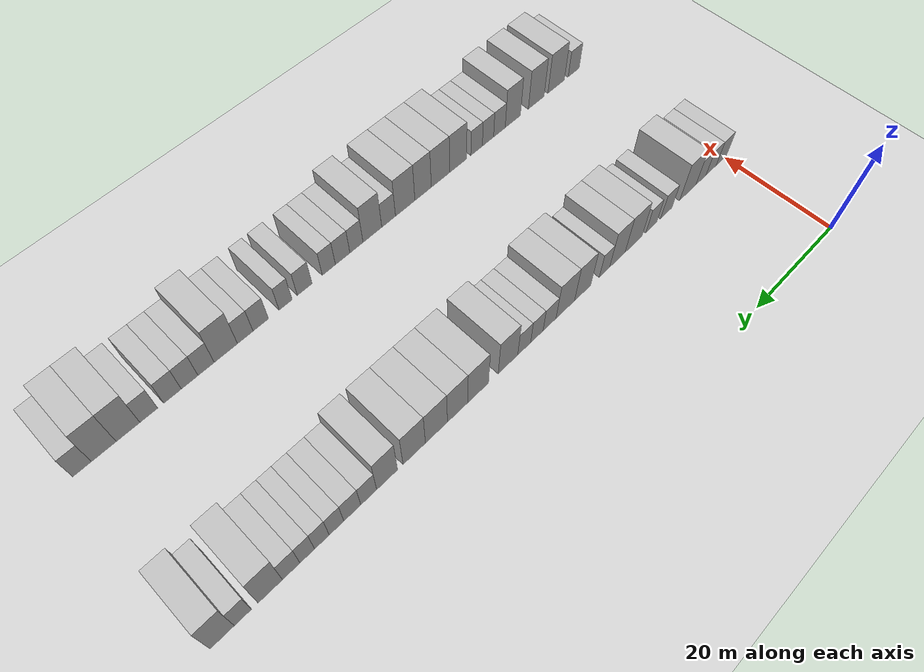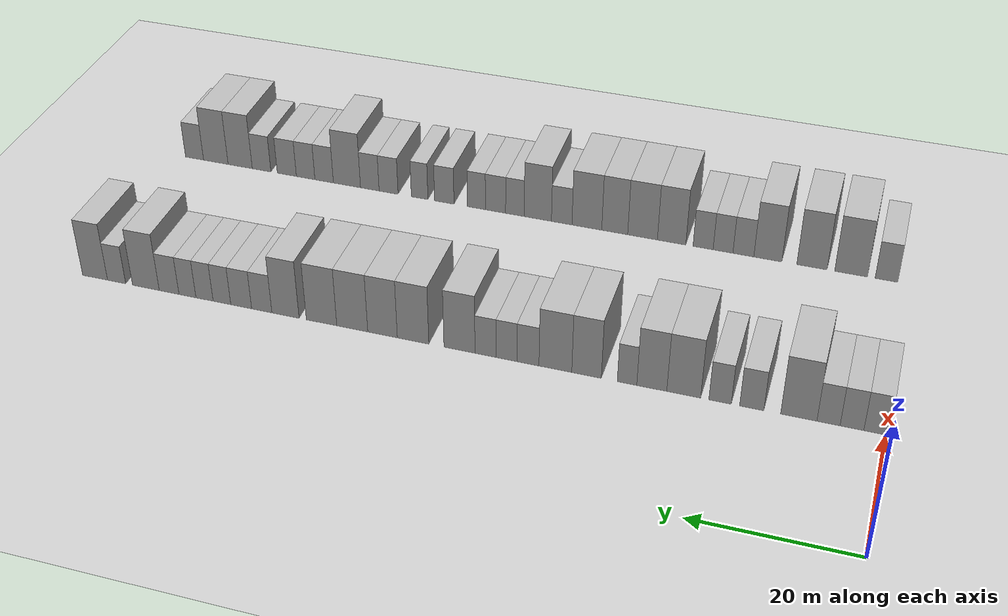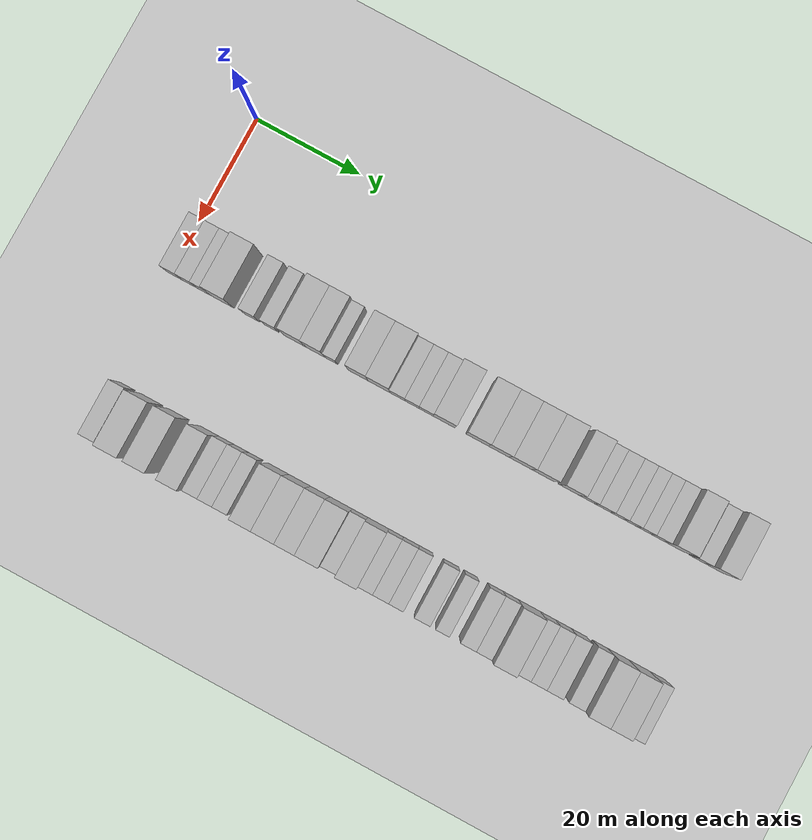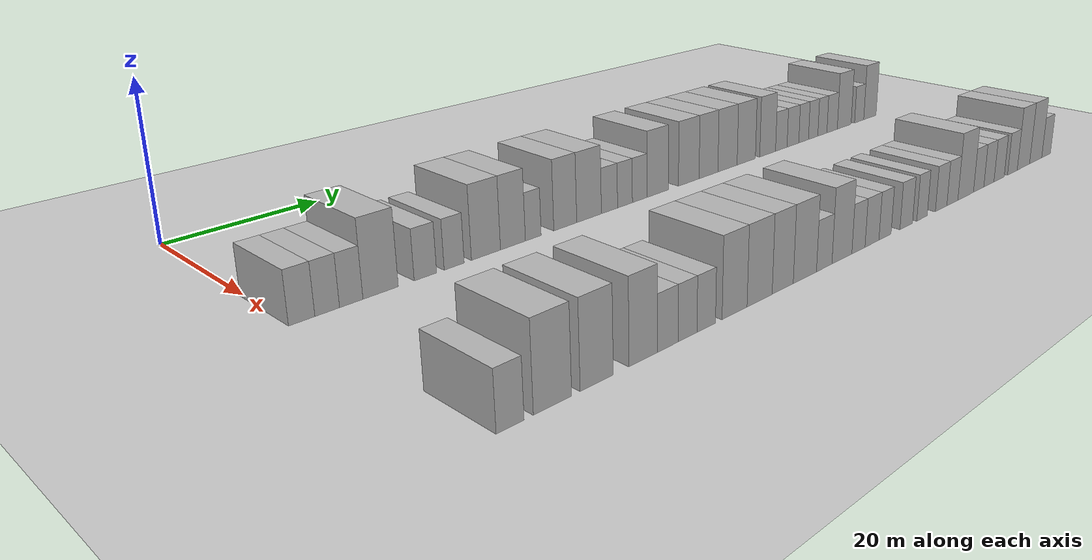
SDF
<sdf version="1.6">
 <world name="default">
  <include>
   <name>ground_plane_2</name>
   <uri>model://HANNAS_ground_plane</uri>
   <pose>100 0 0  0 0 0</pose>
  </include>
  <model name="building_58">
   <static>1</static>
   <pose>25.0000 1.1150 0 0.000000 0.000000 0.000000</pose>
   <link name="link">
    <pose>0 0 3.00 0 0 0</pose>
    <collision name="collision"><geometry><box><size>10.0000 2.8594 6.0000</size></box></geometry></collision>
    <visual name="visual">
     <cast_shadows>0</cast_shadows>
     <geometry><box><size>10.0000 2.8594 6.0000</size></box></geometry>
     <material>
      <script>
       <uri>model://HANNAS_wall/materials/scripts</uri>
       <uri>model://HANNAS_wall/materials/textures</uri>
       <name>vrc/HANNAS_wall</name>
      </script>
     </material>
    </visual>
   </link>
  </model>
  <model name="building_59">
   <static>1</static>
   <pose>25.0000 3.9281 0 0.000000 0.000000 0.000000</pose>
   <link name="link">
    <pose>0 0 3.00 0 0 0</pose>
    <collision name="collision"><geometry><box><size>10.0000 2.7669 6.0000</size></box></geometry></collision>
    <visual name="visual">
     <cast_shadows>0</cast_shadows>
     <geometry><box><size>10.0000 2.7669 6.0000</size></box></geometry>
     <material>
      <script>
       <uri>model://HANNAS_wall/materials/scripts</uri>
       <uri>model://HANNAS_wall/materials/textures</uri>
       <name>vrc/HANNAS_wall</name>
      </script>
     </material>
    </visual>
   </link>
  </model>
  <model name="building_60">
   <static>1</static>
   <pose>25.0000 6.6697 0 0.000000 0.000000 0.000000</pose>
   <link name="link">
    <pose>0 0 3.00 0 0 0</pose>
    <collision name="collision"><geometry><box><size>10.0000 2.7162 6.0000</size></box></geometry></collision>
    <visual name="visual">
     <cast_shadows>0</cast_shadows>
     <geometry><box><size>10.0000 2.7162 6.0000</size></box></geometry>
     <material>
      <script>
       <uri>model://HANNAS_wall/materials/scripts</uri>
       <uri>model://HANNAS_wall/materials/textures</uri>
       <name>vrc/HANNAS_wall</name>
      </script>
     </material>
    </visual>
   </link>
  </model>
  <model name="building_61">
   <static>1</static>
   <pose>25.0000 10.1709 0 0.000000 0.000000 0.000000</pose>
   <link name="link">
    <pose>0 0 4.50 0 0 0</pose>
    <collision name="collision"><geometry><box><size>10.0000 4.2864 9.0000</size></box></geometry></collision>
    <visual name="visual">
     <cast_shadows>0</cast_shadows>
     <geometry><box><size>10.0000 4.2864 9.0000</size></box></geometry>
     <material>
      <script>
       <uri>model://HANNAS_wall/materials/scripts</uri>
       <uri>model://HANNAS_wall/materials/textures</uri>
       <name>vrc/HANNAS_wall</name>
      </script>
     </material>
    </visual>
   </link>
  </model>
  <model name="building_62">
   <static>1</static>
   <pose>25.0000 15.7684 0 0.000000 0.000000 0.000000</pose>
   <link name="link">
    <pose>0 0 3.00 0 0 0</pose>
    <collision name="collision"><geometry><box><size>10.0000 2.9085 6.0000</size></box></geometry></collision>
    <visual name="visual">
     <cast_shadows>0</cast_shadows>
     <geometry><box><size>10.0000 2.9085 6.0000</size></box></geometry>
     <material>
      <script>
       <uri>model://HANNAS_wall/materials/scripts</uri>
       <uri>model://HANNAS_wall/materials/textures</uri>
       <name>vrc/HANNAS_wall</name>
      </script>
     </material>
    </visual>
   </link>
  </model>
  <model name="building_63">
   <static>1</static>
   <pose>25.0000 19.5804 0 0.000000 0.000000 0.000000</pose>
   <link name="link">
    <pose>0 0 3.00 0 0 0</pose>
    <collision name="collision"><geometry><box><size>10.0000 2.7154 6.0000</size></box></geometry></collision>
    <visual name="visual">
     <cast_shadows>0</cast_shadows>
     <geometry><box><size>10.0000 2.7154 6.0000</size></box></geometry>
     <material>
      <script>
       <uri>model://HANNAS_wall/materials/scripts</uri>
       <uri>model://HANNAS_wall/materials/textures</uri>
       <name>vrc/HANNAS_wall</name>
      </script>
     </material>
    </visual>
   </link>
  </model>
  <model name="building_64">
   <static>1</static>
   <pose>25.0000 24.0106 0 0.000000 0.000000 0.000000</pose>
   <link name="link">
    <pose>0 0 4.50 0 0 0</pose>
    <collision name="collision"><geometry><box><size>10.0000 4.1451 9.0000</size></box></geometry></collision>
    <visual name="visual">
     <cast_shadows>0</cast_shadows>
     <geometry><box><size>10.0000 4.1451 9.0000</size></box></geometry>
     <material>
      <script>
       <uri>model://HANNAS_wall/materials/scripts</uri>
       <uri>model://HANNAS_wall/materials/textures</uri>
       <name>vrc/HANNAS_wall</name>
      </script>
     </material>
    </visual>
   </link>
  </model>
  <model name="building_65">
   <static>1</static>
   <pose>25.0000 27.9372 0 0.000000 0.000000 0.000000</pose>
   <link name="link">
    <pose>0 0 4.50 0 0 0</pose>
    <collision name="collision"><geometry><box><size>10.0000 3.7080 9.0000</size></box></geometry></collision>
    <visual name="visual">
     <cast_shadows>0</cast_shadows>
     <geometry><box><size>10.0000 3.7080 9.0000</size></box></geometry>
     <material>
      <script>
       <uri>model://HANNAS_wall/materials/scripts</uri>
       <uri>model://HANNAS_wall/materials/textures</uri>
       <name>vrc/HANNAS_wall</name>
      </script>
     </material>
    </visual>
   </link>
  </model>
  <model name="building_66">
   <static>1</static>
   <pose>25.0000 31.0018 0 0.000000 0.000000 0.000000</pose>
   <link name="link">
    <pose>0 0 3.00 0 0 0</pose>
    <collision name="collision"><geometry><box><size>10.0000 2.4212 6.0000</size></box></geometry></collision>
    <visual name="visual">
     <cast_shadows>0</cast_shadows>
     <geometry><box><size>10.0000 2.4212 6.0000</size></box></geometry>
     <material>
      <script>
       <uri>model://HANNAS_wall/materials/scripts</uri>
       <uri>model://HANNAS_wall/materials/textures</uri>
       <name>vrc/HANNAS_wall</name>
      </script>
     </material>
    </visual>
   </link>
  </model>
  <model name="building_67">
   <static>1</static>
   <pose>25.0000 36.0762 0 0.000000 0.000000 0.000000</pose>
   <link name="link">
    <pose>0 0 4.50 0 0 0</pose>
    <collision name="collision"><geometry><box><size>10.0000 3.7278 9.0000</size></box></geometry></collision>
    <visual name="visual">
     <cast_shadows>0</cast_shadows>
     <geometry><box><size>10.0000 3.7278 9.0000</size></box></geometry>
     <material>
      <script>
       <uri>model://HANNAS_wall/materials/scripts</uri>
       <uri>model://HANNAS_wall/materials/textures</uri>
       <name>vrc/HANNAS_wall</name>
      </script>
     </material>
    </visual>
   </link>
  </model>
  <model name="building_68">
   <static>1</static>
   <pose>25.0000 40.0286 0 0.000000 0.000000 0.000000</pose>
   <link name="link">
    <pose>0 0 4.50 0 0 0</pose>
    <collision name="collision"><geometry><box><size>10.0000 4.1769 9.0000</size></box></geometry></collision>
    <visual name="visual">
     <cast_shadows>0</cast_shadows>
     <geometry><box><size>10.0000 4.1769 9.0000</size></box></geometry>
     <material>
      <script>
       <uri>model://HANNAS_wall/materials/scripts</uri>
       <uri>model://HANNAS_wall/materials/textures</uri>
       <name>vrc/HANNAS_wall</name>
      </script>
     </material>
    </visual>
   </link>
  </model>
  <model name="building_69">
   <static>1</static>
   <pose>25.0000 43.5361 0 0.000000 0.000000 0.000000</pose>
   <link name="link">
    <pose>0 0 3.00 0 0 0</pose>
    <collision name="collision"><geometry><box><size>10.0000 2.8380 6.0000</size></box></geometry></collision>
    <visual name="visual">
     <cast_shadows>0</cast_shadows>
     <geometry><box><size>10.0000 2.8380 6.0000</size></box></geometry>
     <material>
      <script>
       <uri>model://HANNAS_wall/materials/scripts</uri>
       <uri>model://HANNAS_wall/materials/textures</uri>
       <name>vrc/HANNAS_wall</name>
      </script>
     </material>
    </visual>
   </link>
  </model>
  <model name="building_70">
   <static>1</static>
   <pose>25.0000 46.2946 0 0.000000 0.000000 0.000000</pose>
   <link name="link">
    <pose>0 0 3.00 0 0 0</pose>
    <collision name="collision"><geometry><box><size>10.0000 2.6791 6.0000</size></box></geometry></collision>
    <visual name="visual">
     <cast_shadows>0</cast_shadows>
     <geometry><box><size>10.0000 2.6791 6.0000</size></box></geometry>
     <material>
      <script>
       <uri>model://HANNAS_wall/materials/scripts</uri>
       <uri>model://HANNAS_wall/materials/textures</uri>
       <name>vrc/HANNAS_wall</name>
      </script>
     </material>
    </visual>
   </link>
  </model>
  <model name="building_71">
   <static>1</static>
   <pose>25.0000 49.0042 0 0.000000 0.000000 0.000000</pose>
   <link name="link">
    <pose>0 0 3.00 0 0 0</pose>
    <collision name="collision"><geometry><box><size>10.0000 2.7400 6.0000</size></box></geometry></collision>
    <visual name="visual">
     <cast_shadows>0</cast_shadows>
     <geometry><box><size>10.0000 2.7400 6.0000</size></box></geometry>
     <material>
      <script>
       <uri>model://HANNAS_wall/materials/scripts</uri>
       <uri>model://HANNAS_wall/materials/textures</uri>
       <name>vrc/HANNAS_wall</name>
      </script>
     </material>
    </visual>
   </link>
  </model>
  <model name="building_72">
   <static>1</static>
   <pose>25.0000 52.4080 0 0.000000 0.000000 0.000000</pose>
   <link name="link">
    <pose>0 0 4.50 0 0 0</pose>
    <collision name="collision"><geometry><box><size>10.0000 4.0677 9.0000</size></box></geometry></collision>
    <visual name="visual">
     <cast_shadows>0</cast_shadows>
     <geometry><box><size>10.0000 4.0677 9.0000</size></box></geometry>
     <material>
      <script>
       <uri>model://HANNAS_wall/materials/scripts</uri>
       <uri>model://HANNAS_wall/materials/textures</uri>
       <name>vrc/HANNAS_wall</name>
      </script>
     </material>
    </visual>
   </link>
  </model>
  <model name="building_73">
   <static>1</static>
   <pose>25.0000 58.5388 0 0.000000 0.000000 0.000000</pose>
   <link name="link">
    <pose>0 0 4.50 0 0 0</pose>
    <collision name="collision"><geometry><box><size>10.0000 4.1938 9.0000</size></box></geometry></collision>
    <visual name="visual">
     <cast_shadows>0</cast_shadows>
     <geometry><box><size>10.0000 4.1938 9.0000</size></box></geometry>
     <material>
      <script>
       <uri>model://HANNAS_wall/materials/scripts</uri>
       <uri>model://HANNAS_wall/materials/textures</uri>
       <name>vrc/HANNAS_wall</name>
      </script>
     </material>
    </visual>
   </link>
  </model>
  <model name="building_74">
   <static>1</static>
   <pose>25.0000 62.6216 0 0.000000 0.000000 0.000000</pose>
   <link name="link">
    <pose>0 0 4.50 0 0 0</pose>
    <collision name="collision"><geometry><box><size>10.0000 3.9719 9.0000</size></box></geometry></collision>
    <visual name="visual">
     <cast_shadows>0</cast_shadows>
     <geometry><box><size>10.0000 3.9719 9.0000</size></box></geometry>
     <material>
      <script>
       <uri>model://HANNAS_wall/materials/scripts</uri>
       <uri>model://HANNAS_wall/materials/textures</uri>
       <name>vrc/HANNAS_wall</name>
      </script>
     </material>
    </visual>
   </link>
  </model>
  <model name="building_75">
   <static>1</static>
   <pose>25.0000 66.7093 0 0.000000 0.000000 0.000000</pose>
   <link name="link">
    <pose>0 0 4.50 0 0 0</pose>
    <collision name="collision"><geometry><box><size>10.0000 4.2034 9.0000</size></box></geometry></collision>
    <visual name="visual">
     <cast_shadows>0</cast_shadows>
     <geometry><box><size>10.0000 4.2034 9.0000</size></box></geometry>
     <material>
      <script>
       <uri>model://HANNAS_wall/materials/scripts</uri>
       <uri>model://HANNAS_wall/materials/textures</uri>
       <name>vrc/HANNAS_wall</name>
      </script>
     </material>
    </visual>
   </link>
  </model>
  <model name="building_76">
   <static>1</static>
   <pose>25.0000 70.8967 0 0.000000 0.000000 0.000000</pose>
   <link name="link">
    <pose>0 0 4.50 0 0 0</pose>
    <collision name="collision"><geometry><box><size>10.0000 4.1715 9.0000</size></box></geometry></collision>
    <visual name="visual">
     <cast_shadows>0</cast_shadows>
     <geometry><box><size>10.0000 4.1715 9.0000</size></box></geometry>
     <material>
      <script>
       <uri>model://HANNAS_wall/materials/scripts</uri>
       <uri>model://HANNAS_wall/materials/textures</uri>
       <name>vrc/HANNAS_wall</name>
      </script>
     </material>
    </visual>
   </link>
  </model>
  <model name="building_77">
   <static>1</static>
   <pose>25.0000 75.8681 0 0.000000 0.000000 0.000000</pose>
   <link name="link">
    <pose>0 0 4.50 0 0 0</pose>
    <collision name="collision"><geometry><box><size>10.0000 3.7712 9.0000</size></box></geometry></collision>
    <visual name="visual">
     <cast_shadows>0</cast_shadows>
     <geometry><box><size>10.0000 3.7712 9.0000</size></box></geometry>
     <material>
      <script>
       <uri>model://HANNAS_wall/materials/scripts</uri>
       <uri>model://HANNAS_wall/materials/textures</uri>
       <name>vrc/HANNAS_wall</name>
      </script>
     </material>
    </visual>
   </link>
  </model>
  <model name="building_78">
   <static>1</static>
   <pose>25.0000 79.1650 0 0.000000 0.000000 0.000000</pose>
   <link name="link">
    <pose>0 0 3.00 0 0 0</pose>
    <collision name="collision"><geometry><box><size>10.0000 2.8226 6.0000</size></box></geometry></collision>
    <visual name="visual">
     <cast_shadows>0</cast_shadows>
     <geometry><box><size>10.0000 2.8226 6.0000</size></box></geometry>
     <material>
      <script>
       <uri>model://HANNAS_wall/materials/scripts</uri>
       <uri>model://HANNAS_wall/materials/textures</uri>
       <name>vrc/HANNAS_wall</name>
      </script>
     </material>
    </visual>
   </link>
  </model>
  <model name="building_79">
   <static>1</static>
   <pose>25.0000 82.0449 0 0.000000 0.000000 0.000000</pose>
   <link name="link">
    <pose>0 0 3.00 0 0 0</pose>
    <collision name="collision"><geometry><box><size>10.0000 2.9370 6.0000</size></box></geometry></collision>
    <visual name="visual">
     <cast_shadows>0</cast_shadows>
     <geometry><box><size>10.0000 2.9370 6.0000</size></box></geometry>
     <material>
      <script>
       <uri>model://HANNAS_wall/materials/scripts</uri>
       <uri>model://HANNAS_wall/materials/textures</uri>
       <name>vrc/HANNAS_wall</name>
      </script>
     </material>
    </visual>
   </link>
  </model>
  <model name="building_80">
   <static>1</static>
   <pose>25.0000 84.7592 0 0.000000 0.000000 0.000000</pose>
   <link name="link">
    <pose>0 0 3.00 0 0 0</pose>
    <collision name="collision"><geometry><box><size>10.0000 2.4918 6.0000</size></box></geometry></collision>
    <visual name="visual">
     <cast_shadows>0</cast_shadows>
     <geometry><box><size>10.0000 2.4918 6.0000</size></box></geometry>
     <material>
      <script>
       <uri>model://HANNAS_wall/materials/scripts</uri>
       <uri>model://HANNAS_wall/materials/textures</uri>
       <name>vrc/HANNAS_wall</name>
      </script>
     </material>
    </visual>
   </link>
  </model>
  <model name="building_81">
   <static>1</static>
   <pose>25.0000 87.2324 0 0.000000 0.000000 0.000000</pose>
   <link name="link">
    <pose>0 0 3.00 0 0 0</pose>
    <collision name="collision"><geometry><box><size>10.0000 2.4546 6.0000</size></box></geometry></collision>
    <visual name="visual">
     <cast_shadows>0</cast_shadows>
     <geometry><box><size>10.0000 2.4546 6.0000</size></box></geometry>
     <material>
      <script>
       <uri>model://HANNAS_wall/materials/scripts</uri>
       <uri>model://HANNAS_wall/materials/textures</uri>
       <name>vrc/HANNAS_wall</name>
      </script>
     </material>
    </visual>
   </link>
  </model>
  <model name="building_82">
   <static>1</static>
   <pose>25.0000 89.6727 0 0.000000 0.000000 0.000000</pose>
   <link name="link">
    <pose>0 0 3.00 0 0 0</pose>
    <collision name="collision"><geometry><box><size>10.0000 2.4259 6.0000</size></box></geometry></collision>
    <visual name="visual">
     <cast_shadows>0</cast_shadows>
     <geometry><box><size>10.0000 2.4259 6.0000</size></box></geometry>
     <material>
      <script>
       <uri>model://HANNAS_wall/materials/scripts</uri>
       <uri>model://HANNAS_wall/materials/textures</uri>
       <name>vrc/HANNAS_wall</name>
      </script>
     </material>
    </visual>
   </link>
  </model>
  <model name="building_83">
   <static>1</static>
   <pose>25.0000 92.3049 0 0.000000 0.000000 0.000000</pose>
   <link name="link">
    <pose>0 0 3.00 0 0 0</pose>
    <collision name="collision"><geometry><box><size>10.0000 2.8386 6.0000</size></box></geometry></collision>
    <visual name="visual">
     <cast_shadows>0</cast_shadows>
     <geometry><box><size>10.0000 2.8386 6.0000</size></box></geometry>
     <material>
      <script>
       <uri>model://HANNAS_wall/materials/scripts</uri>
       <uri>model://HANNAS_wall/materials/textures</uri>
       <name>vrc/HANNAS_wall</name>
      </script>
     </material>
    </visual>
   </link>
  </model>
  <model name="building_84">
   <static>1</static>
   <pose>25.0000 95.6611 0 0.000000 0.000000 0.000000</pose>
   <link name="link">
    <pose>0 0 4.50 0 0 0</pose>
    <collision name="collision"><geometry><box><size>10.0000 3.8737 9.0000</size></box></geometry></collision>
    <visual name="visual">
     <cast_shadows>0</cast_shadows>
     <geometry><box><size>10.0000 3.8737 9.0000</size></box></geometry>
     <material>
      <script>
       <uri>model://HANNAS_wall/materials/scripts</uri>
       <uri>model://HANNAS_wall/materials/textures</uri>
       <name>vrc/HANNAS_wall</name>
      </script>
     </material>
    </visual>
   </link>
  </model>
  <model name="building_85">
   <static>1</static>
   <pose>25.0000 99.9263 0 0.000000 0.000000 0.000000</pose>
   <link name="link">
    <pose>0 0 3.00 0 0 0</pose>
    <collision name="collision"><geometry><box><size>10.0000 2.6568 6.0000</size></box></geometry></collision>
    <visual name="visual">
     <cast_shadows>0</cast_shadows>
     <geometry><box><size>10.0000 2.6568 6.0000</size></box></geometry>
     <material>
      <script>
       <uri>model://HANNAS_wall/materials/scripts</uri>
       <uri>model://HANNAS_wall/materials/textures</uri>
       <name>vrc/HANNAS_wall</name>
      </script>
     </material>
    </visual>
   </link>
  </model>
  <model name="building_86">
   <static>1</static>
   <pose>25.0000 103.0856 0 0.000000 0.000000 0.000000</pose>
   <link name="link">
    <pose>0 0 4.50 0 0 0</pose>
    <collision name="collision"><geometry><box><size>10.0000 3.6617 9.0000</size></box></geometry></collision>
    <visual name="visual">
     <cast_shadows>0</cast_shadows>
     <geometry><box><size>10.0000 3.6617 9.0000</size></box></geometry>
     <material>
      <script>
       <uri>model://HANNAS_wall/materials/scripts</uri>
       <uri>model://HANNAS_wall/materials/textures</uri>
       <name>vrc/HANNAS_wall</name>
      </script>
     </material>
    </visual>
   </link>
  </model>
  <model name="building_175">
   <static>1</static>
   <pose>55.0000 2.9920 0 0.000000 0.000000 0.000000</pose>
   <link name="link">
    <pose>0 0 3.00 0 0 0</pose>
    <collision name="collision"><geometry><box><size>10.0000 2.9440 6.0000</size></box></geometry></collision>
    <visual name="visual">
     <cast_shadows>0</cast_shadows>
     <geometry><box><size>10.0000 2.9440 6.0000</size></box></geometry>
     <material>
      <script>
       <uri>model://HANNAS_wall/materials/scripts</uri>
       <uri>model://HANNAS_wall/materials/textures</uri>
       <name>vrc/HANNAS_wall</name>
      </script>
     </material>
    </visual>
   </link>
  </model>
  <model name="building_176">
   <static>1</static>
   <pose>55.0000 7.6206 0 0.000000 0.000000 0.000000</pose>
   <link name="link">
    <pose>0 0 4.50 0 0 0</pose>
    <collision name="collision"><geometry><box><size>10.0000 4.3132 9.0000</size></box></geometry></collision>
    <visual name="visual">
     <cast_shadows>0</cast_shadows>
     <geometry><box><size>10.0000 4.3132 9.0000</size></box></geometry>
     <material>
      <script>
       <uri>model://HANNAS_wall/materials/scripts</uri>
       <uri>model://HANNAS_wall/materials/textures</uri>
       <name>vrc/HANNAS_wall</name>
      </script>
     </material>
    </visual>
   </link>
  </model>
  <model name="building_177">
   <static>1</static>
   <pose>55.0000 12.7928 0 0.000000 0.000000 0.000000</pose>
   <link name="link">
    <pose>0 0 4.50 0 0 0</pose>
    <collision name="collision"><geometry><box><size>10.0000 4.0311 9.0000</size></box></geometry></collision>
    <visual name="visual">
     <cast_shadows>0</cast_shadows>
     <geometry><box><size>10.0000 4.0311 9.0000</size></box></geometry>
     <material>
      <script>
       <uri>model://HANNAS_wall/materials/scripts</uri>
       <uri>model://HANNAS_wall/materials/textures</uri>
       <name>vrc/HANNAS_wall</name>
      </script>
     </material>
    </visual>
   </link>
  </model>
  <model name="building_178">
   <static>1</static>
   <pose>55.0000 18.7006 0 0.000000 0.000000 0.000000</pose>
   <link name="link">
    <pose>0 0 4.50 0 0 0</pose>
    <collision name="collision"><geometry><box><size>10.0000 3.7845 9.0000</size></box></geometry></collision>
    <visual name="visual">
     <cast_shadows>0</cast_shadows>
     <geometry><box><size>10.0000 3.7845 9.0000</size></box></geometry>
     <material>
      <script>
       <uri>model://HANNAS_wall/materials/scripts</uri>
       <uri>model://HANNAS_wall/materials/textures</uri>
       <name>vrc/HANNAS_wall</name>
      </script>
     </material>
    </visual>
   </link>
  </model>
  <model name="building_179">
   <static>1</static>
   <pose>55.0000 22.0111 0 0.000000 0.000000 0.000000</pose>
   <link name="link">
    <pose>0 0 3.00 0 0 0</pose>
    <collision name="collision"><geometry><box><size>10.0000 2.8365 6.0000</size></box></geometry></collision>
    <visual name="visual">
     <cast_shadows>0</cast_shadows>
     <geometry><box><size>10.0000 2.8365 6.0000</size></box></geometry>
     <material>
      <script>
       <uri>model://HANNAS_wall/materials/scripts</uri>
       <uri>model://HANNAS_wall/materials/textures</uri>
       <name>vrc/HANNAS_wall</name>
      </script>
     </material>
    </visual>
   </link>
  </model>
  <model name="building_180">
   <static>1</static>
   <pose>55.0000 24.7805 0 0.000000 0.000000 0.000000</pose>
   <link name="link">
    <pose>0 0 3.00 0 0 0</pose>
    <collision name="collision"><geometry><box><size>10.0000 2.7025 6.0000</size></box></geometry></collision>
    <visual name="visual">
     <cast_shadows>0</cast_shadows>
     <geometry><box><size>10.0000 2.7025 6.0000</size></box></geometry>
     <material>
      <script>
       <uri>model://HANNAS_wall/materials/scripts</uri>
       <uri>model://HANNAS_wall/materials/textures</uri>
       <name>vrc/HANNAS_wall</name>
      </script>
     </material>
    </visual>
   </link>
  </model>
  <model name="building_181">
   <static>1</static>
   <pose>55.0000 27.5106 0 0.000000 0.000000 0.000000</pose>
   <link name="link">
    <pose>0 0 3.00 0 0 0</pose>
    <collision name="collision"><geometry><box><size>10.0000 2.7575 6.0000</size></box></geometry></collision>
    <visual name="visual">
     <cast_shadows>0</cast_shadows>
     <geometry><box><size>10.0000 2.7575 6.0000</size></box></geometry>
     <material>
      <script>
       <uri>model://HANNAS_wall/materials/scripts</uri>
       <uri>model://HANNAS_wall/materials/textures</uri>
       <name>vrc/HANNAS_wall</name>
      </script>
     </material>
    </visual>
   </link>
  </model>
  <model name="building_182">
   <static>1</static>
   <pose>55.0000 31.8588 0 0.000000 0.000000 0.000000</pose>
   <link name="link">
    <pose>0 0 4.50 0 0 0</pose>
    <collision name="collision"><geometry><box><size>10.0000 3.9389 9.0000</size></box></geometry></collision>
    <visual name="visual">
     <cast_shadows>0</cast_shadows>
     <geometry><box><size>10.0000 3.9389 9.0000</size></box></geometry>
     <material>
      <script>
       <uri>model://HANNAS_wall/materials/scripts</uri>
       <uri>model://HANNAS_wall/materials/textures</uri>
       <name>vrc/HANNAS_wall</name>
      </script>
     </material>
    </visual>
   </link>
  </model>
  <model name="building_183">
   <static>1</static>
   <pose>55.0000 35.9088 0 0.000000 0.000000 0.000000</pose>
   <link name="link">
    <pose>0 0 4.50 0 0 0</pose>
    <collision name="collision"><geometry><box><size>10.0000 4.1612 9.0000</size></box></geometry></collision>
    <visual name="visual">
     <cast_shadows>0</cast_shadows>
     <geometry><box><size>10.0000 4.1612 9.0000</size></box></geometry>
     <material>
      <script>
       <uri>model://HANNAS_wall/materials/scripts</uri>
       <uri>model://HANNAS_wall/materials/textures</uri>
       <name>vrc/HANNAS_wall</name>
      </script>
     </material>
    </visual>
   </link>
  </model>
  <model name="building_184">
   <static>1</static>
   <pose>55.0000 39.8217 0 0.000000 0.000000 0.000000</pose>
   <link name="link">
    <pose>0 0 4.50 0 0 0</pose>
    <collision name="collision"><geometry><box><size>10.0000 3.6645 9.0000</size></box></geometry></collision>
    <visual name="visual">
     <cast_shadows>0</cast_shadows>
     <geometry><box><size>10.0000 3.6645 9.0000</size></box></geometry>
     <material>
      <script>
       <uri>model://HANNAS_wall/materials/scripts</uri>
       <uri>model://HANNAS_wall/materials/textures</uri>
       <name>vrc/HANNAS_wall</name>
      </script>
     </material>
    </visual>
   </link>
  </model>
  <model name="building_185">
   <static>1</static>
   <pose>55.0000 43.7722 0 0.000000 0.000000 0.000000</pose>
   <link name="link">
    <pose>0 0 4.50 0 0 0</pose>
    <collision name="collision"><geometry><box><size>10.0000 4.2366 9.0000</size></box></geometry></collision>
    <visual name="visual">
     <cast_shadows>0</cast_shadows>
     <geometry><box><size>10.0000 4.2366 9.0000</size></box></geometry>
     <material>
      <script>
       <uri>model://HANNAS_wall/materials/scripts</uri>
       <uri>model://HANNAS_wall/materials/textures</uri>
       <name>vrc/HANNAS_wall</name>
      </script>
     </material>
    </visual>
   </link>
  </model>
  <model name="building_186">
   <static>1</static>
   <pose>55.0000 47.3622 0 0.000000 0.000000 0.000000</pose>
   <link name="link">
    <pose>0 0 3.00 0 0 0</pose>
    <collision name="collision"><geometry><box><size>10.0000 2.9435 6.0000</size></box></geometry></collision>
    <visual name="visual">
     <cast_shadows>0</cast_shadows>
     <geometry><box><size>10.0000 2.9435 6.0000</size></box></geometry>
     <material>
      <script>
       <uri>model://HANNAS_wall/materials/scripts</uri>
       <uri>model://HANNAS_wall/materials/textures</uri>
       <name>vrc/HANNAS_wall</name>
      </script>
     </material>
    </visual>
   </link>
  </model>
  <model name="building_187">
   <static>1</static>
   <pose>55.0000 50.8018 0 0.000000 0.000000 0.000000</pose>
   <link name="link">
    <pose>0 0 4.50 0 0 0</pose>
    <collision name="collision"><geometry><box><size>10.0000 3.9355 9.0000</size></box></geometry></collision>
    <visual name="visual">
     <cast_shadows>0</cast_shadows>
     <geometry><box><size>10.0000 3.9355 9.0000</size></box></geometry>
     <material>
      <script>
       <uri>model://HANNAS_wall/materials/scripts</uri>
       <uri>model://HANNAS_wall/materials/textures</uri>
       <name>vrc/HANNAS_wall</name>
      </script>
     </material>
    </visual>
   </link>
  </model>
  <model name="building_188">
   <static>1</static>
   <pose>55.0000 54.1239 0 0.000000 0.000000 0.000000</pose>
   <link name="link">
    <pose>0 0 3.00 0 0 0</pose>
    <collision name="collision"><geometry><box><size>10.0000 2.7088 6.0000</size></box></geometry></collision>
    <visual name="visual">
     <cast_shadows>0</cast_shadows>
     <geometry><box><size>10.0000 2.7088 6.0000</size></box></geometry>
     <material>
      <script>
       <uri>model://HANNAS_wall/materials/scripts</uri>
       <uri>model://HANNAS_wall/materials/textures</uri>
       <name>vrc/HANNAS_wall</name>
      </script>
     </material>
    </visual>
   </link>
  </model>
  <model name="building_189">
   <static>1</static>
   <pose>55.0000 56.9526 0 0.000000 0.000000 0.000000</pose>
   <link name="link">
    <pose>0 0 3.00 0 0 0</pose>
    <collision name="collision"><geometry><box><size>10.0000 2.9485 6.0000</size></box></geometry></collision>
    <visual name="visual">
     <cast_shadows>0</cast_shadows>
     <geometry><box><size>10.0000 2.9485 6.0000</size></box></geometry>
     <material>
      <script>
       <uri>model://HANNAS_wall/materials/scripts</uri>
       <uri>model://HANNAS_wall/materials/textures</uri>
       <name>vrc/HANNAS_wall</name>
      </script>
     </material>
    </visual>
   </link>
  </model>
  <model name="building_190">
   <static>1</static>
   <pose>55.0000 59.7484 0 0.000000 0.000000 0.000000</pose>
   <link name="link">
    <pose>0 0 3.00 0 0 0</pose>
    <collision name="collision"><geometry><box><size>10.0000 2.6432 6.0000</size></box></geometry></collision>
    <visual name="visual">
     <cast_shadows>0</cast_shadows>
     <geometry><box><size>10.0000 2.6432 6.0000</size></box></geometry>
     <material>
      <script>
       <uri>model://HANNAS_wall/materials/scripts</uri>
       <uri>model://HANNAS_wall/materials/textures</uri>
       <name>vrc/HANNAS_wall</name>
      </script>
     </material>
    </visual>
   </link>
  </model>
  <model name="building_191">
   <static>1</static>
   <pose>55.0000 64.5116 0 0.000000 0.000000 0.000000</pose>
   <link name="link">
    <pose>0 0 3.00 0 0 0</pose>
    <collision name="collision"><geometry><box><size>10.0000 2.8831 6.0000</size></box></geometry></collision>
    <visual name="visual">
     <cast_shadows>0</cast_shadows>
     <geometry><box><size>10.0000 2.8831 6.0000</size></box></geometry>
     <material>
      <script>
       <uri>model://HANNAS_wall/materials/scripts</uri>
       <uri>model://HANNAS_wall/materials/textures</uri>
       <name>vrc/HANNAS_wall</name>
      </script>
     </material>
    </visual>
   </link>
  </model>
  <model name="building_192">
   <static>1</static>
   <pose>55.0000 68.1967 0 0.000000 0.000000 0.000000</pose>
   <link name="link">
    <pose>0 0 3.00 0 0 0</pose>
    <collision name="collision"><geometry><box><size>10.0000 2.4870 6.0000</size></box></geometry></collision>
    <visual name="visual">
     <cast_shadows>0</cast_shadows>
     <geometry><box><size>10.0000 2.4870 6.0000</size></box></geometry>
     <material>
      <script>
       <uri>model://HANNAS_wall/materials/scripts</uri>
       <uri>model://HANNAS_wall/materials/textures</uri>
       <name>vrc/HANNAS_wall</name>
      </script>
     </material>
    </visual>
   </link>
  </model>
  <model name="building_193">
   <static>1</static>
   <pose>55.0000 72.8769 0 0.000000 0.000000 0.000000</pose>
   <link name="link">
    <pose>0 0 3.00 0 0 0</pose>
    <collision name="collision"><geometry><box><size>10.0000 2.8735 6.0000</size></box></geometry></collision>
    <visual name="visual">
     <cast_shadows>0</cast_shadows>
     <geometry><box><size>10.0000 2.8735 6.0000</size></box></geometry>
     <material>
      <script>
       <uri>model://HANNAS_wall/materials/scripts</uri>
       <uri>model://HANNAS_wall/materials/textures</uri>
       <name>vrc/HANNAS_wall</name>
      </script>
     </material>
    </visual>
   </link>
  </model>
  <model name="building_194">
   <static>1</static>
   <pose>55.0000 75.7324 0 0.000000 0.000000 0.000000</pose>
   <link name="link">
    <pose>0 0 3.00 0 0 0</pose>
    <collision name="collision"><geometry><box><size>10.0000 2.8373 6.0000</size></box></geometry></collision>
    <visual name="visual">
     <cast_shadows>0</cast_shadows>
     <geometry><box><size>10.0000 2.8373 6.0000</size></box></geometry>
     <material>
      <script>
       <uri>model://HANNAS_wall/materials/scripts</uri>
       <uri>model://HANNAS_wall/materials/textures</uri>
       <name>vrc/HANNAS_wall</name>
      </script>
     </material>
    </visual>
   </link>
  </model>
  <model name="building_195">
   <static>1</static>
   <pose>55.0000 79.2339 0 0.000000 0.000000 0.000000</pose>
   <link name="link">
    <pose>0 0 4.50 0 0 0</pose>
    <collision name="collision"><geometry><box><size>10.0000 4.1658 9.0000</size></box></geometry></collision>
    <visual name="visual">
     <cast_shadows>0</cast_shadows>
     <geometry><box><size>10.0000 4.1658 9.0000</size></box></geometry>
     <material>
      <script>
       <uri>model://HANNAS_wall/materials/scripts</uri>
       <uri>model://HANNAS_wall/materials/textures</uri>
       <name>vrc/HANNAS_wall</name>
      </script>
     </material>
    </visual>
   </link>
  </model>
  <model name="building_196">
   <static>1</static>
   <pose>55.0000 82.7449 0 0.000000 0.000000 0.000000</pose>
   <link name="link">
    <pose>0 0 3.00 0 0 0</pose>
    <collision name="collision"><geometry><box><size>10.0000 2.8563 6.0000</size></box></geometry></collision>
    <visual name="visual">
     <cast_shadows>0</cast_shadows>
     <geometry><box><size>10.0000 2.8563 6.0000</size></box></geometry>
     <material>
      <script>
       <uri>model://HANNAS_wall/materials/scripts</uri>
       <uri>model://HANNAS_wall/materials/textures</uri>
       <name>vrc/HANNAS_wall</name>
      </script>
     </material>
    </visual>
   </link>
  </model>
  <model name="building_197">
   <static>1</static>
   <pose>55.0000 85.6143 0 0.000000 0.000000 0.000000</pose>
   <link name="link">
    <pose>0 0 3.00 0 0 0</pose>
    <collision name="collision"><geometry><box><size>10.0000 2.8824 6.0000</size></box></geometry></collision>
    <visual name="visual">
     <cast_shadows>0</cast_shadows>
     <geometry><box><size>10.0000 2.8824 6.0000</size></box></geometry>
     <material>
      <script>
       <uri>model://HANNAS_wall/materials/scripts</uri>
       <uri>model://HANNAS_wall/materials/textures</uri>
       <name>vrc/HANNAS_wall</name>
      </script>
     </material>
    </visual>
   </link>
  </model>
  <model name="building_198">
   <static>1</static>
   <pose>55.0000 88.5481 0 0.000000 0.000000 0.000000</pose>
   <link name="link">
    <pose>0 0 3.00 0 0 0</pose>
    <collision name="collision"><geometry><box><size>10.0000 2.9852 6.0000</size></box></geometry></collision>
    <visual name="visual">
     <cast_shadows>0</cast_shadows>
     <geometry><box><size>10.0000 2.9852 6.0000</size></box></geometry>
     <material>
      <script>
       <uri>model://HANNAS_wall/materials/scripts</uri>
       <uri>model://HANNAS_wall/materials/textures</uri>
       <name>vrc/HANNAS_wall</name>
      </script>
     </material>
    </visual>
   </link>
  </model>
  <model name="building_199">
   <static>1</static>
   <pose>55.0000 92.5107 0 0.000000 0.000000 0.000000</pose>
   <link name="link">
    <pose>0 0 3.00 0 0 0</pose>
    <collision name="collision"><geometry><box><size>10.0000 2.9399 6.0000</size></box></geometry></collision>
    <visual name="visual">
     <cast_shadows>0</cast_shadows>
     <geometry><box><size>10.0000 2.9399 6.0000</size></box></geometry>
     <material>
      <script>
       <uri>model://HANNAS_wall/materials/scripts</uri>
       <uri>model://HANNAS_wall/materials/textures</uri>
       <name>vrc/HANNAS_wall</name>
      </script>
     </material>
    </visual>
   </link>
  </model>
  <model name="building_200">
   <static>1</static>
   <pose>55.0000 95.9004 0 0.000000 0.000000 0.000000</pose>
   <link name="link">
    <pose>0 0 4.50 0 0 0</pose>
    <collision name="collision"><geometry><box><size>10.0000 3.8396 9.0000</size></box></geometry></collision>
    <visual name="visual">
     <cast_shadows>0</cast_shadows>
     <geometry><box><size>10.0000 3.8396 9.0000</size></box></geometry>
     <material>
      <script>
       <uri>model://HANNAS_wall/materials/scripts</uri>
       <uri>model://HANNAS_wall/materials/textures</uri>
       <name>vrc/HANNAS_wall</name>
      </script>
     </material>
    </visual>
   </link>
  </model>
  <model name="building_201">
   <static>1</static>
   <pose>55.0000 99.7877 0 0.000000 0.000000 0.000000</pose>
   <link name="link">
    <pose>0 0 4.50 0 0 0</pose>
    <collision name="collision"><geometry><box><size>10.0000 3.9351 9.0000</size></box></geometry></collision>
    <visual name="visual">
     <cast_shadows>0</cast_shadows>
     <geometry><box><size>10.0000 3.9351 9.0000</size></box></geometry>
     <material>
      <script>
       <uri>model://HANNAS_wall/materials/scripts</uri>
       <uri>model://HANNAS_wall/materials/textures</uri>
       <name>vrc/HANNAS_wall</name>
      </script>
     </material>
    </visual>
   </link>
  </model>
  <model name="building_202">
   <static>1</static>
   <pose>55.0000 103.2037 0 0.000000 0.000000 0.000000</pose>
   <link name="link">
    <pose>0 0 3.00 0 0 0</pose>
    <collision name="collision"><geometry><box><size>10.0000 2.8970 6.0000</size></box></geometry></collision>
    <visual name="visual">
     <cast_shadows>0</cast_shadows>
     <geometry><box><size>10.0000 2.8970 6.0000</size></box></geometry>
     <material>
      <script>
       <uri>model://HANNAS_wall/materials/scripts</uri>
       <uri>model://HANNAS_wall/materials/textures</uri>
       <name>vrc/HANNAS_wall</name>
      </script>
     </material>
    </visual>
   </link>
  </model>
 </world>
</sdf>
